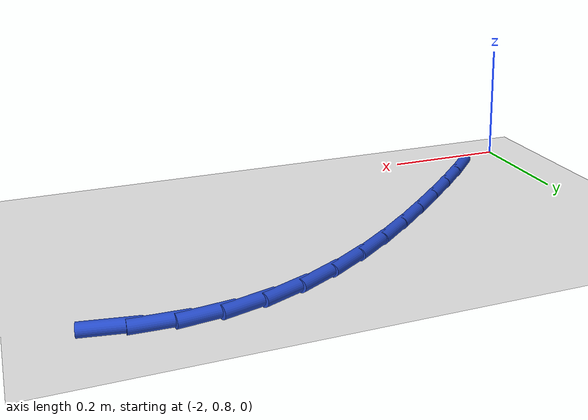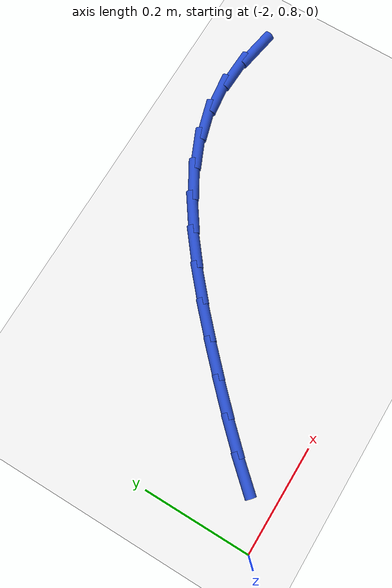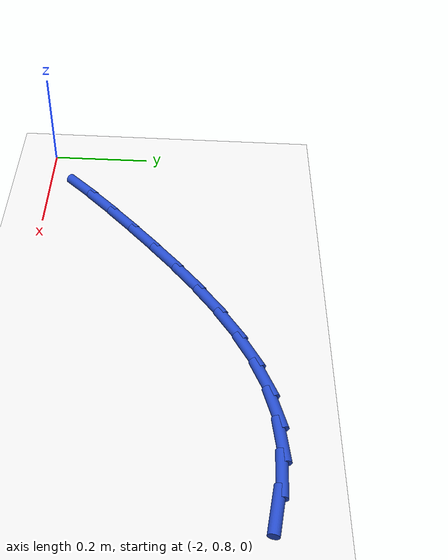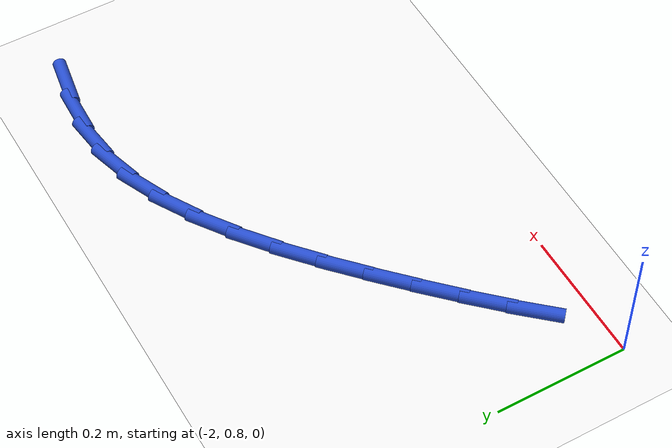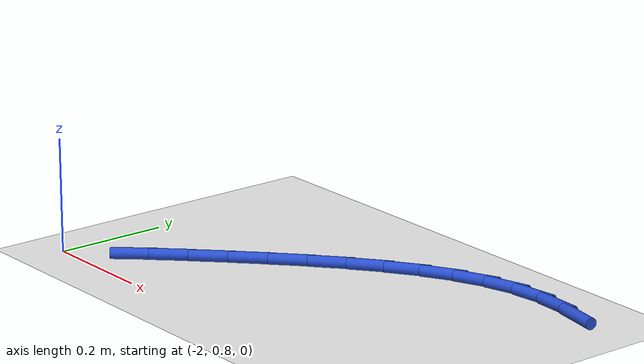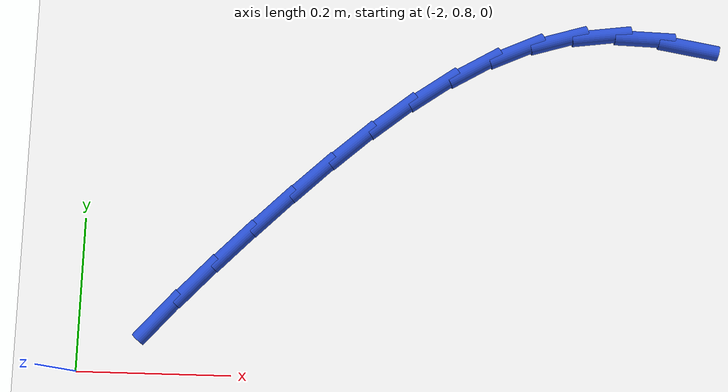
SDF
<sdf version="1.6">
 <world name="default">
  <model name="ground_plane">
   <static>1</static>
   <link name="link">
    <collision name="collision">
     <geometry><plane><normal>0 0 1</normal><size>100 100</size></plane></geometry>
     <surface><friction><ode><mu>100</mu><mu2>50</mu2></ode></friction></surface>
    </collision>
    <visual name="visual">
     <cast_shadows>0</cast_shadows>
     <geometry><plane><normal>0 0 1</normal><size>100 100</size></plane></geometry>
     <material>
      <script><uri>file://media/materials/scripts/gazebo.material</uri><name>Gazebo/WhiteGlow</name></script>
     </material>
    </visual>
   </link>
  </model>
  <model name="line">
   <link name="link_29">
    <pose>-1.2095417057278621 1.249883865041486 0.01 0 1.57 -0.17493050236412733</pose>
    <collision name="collision">
     <geometry><cylinder><radius>0.01</radius><length>0.08</length></cylinder></geometry>
    </collision>
    <visual name="visual">
     <material>
      <script><name>Gazebo/Blue</name><uri>file://media/materials/scripts/gazebo.material</uri></script>
     </material>
     <geometry><cylinder><radius>0.01</radius><length>0.08</length></cylinder></geometry>
    </visual>
   </link>
   <link name="link_30">
    <pose>-1.267807845268561 1.2601816447032816 0.01 0 1.57 -0.03686939797291417</pose>
    <collision name="collision">
     <geometry><cylinder><radius>0.01</radius><length>0.08</length></cylinder></geometry>
    </collision>
    <visual name="visual">
     <material>
      <script><name>Gazebo/Blue</name><uri>file://media/materials/scripts/gazebo.material</uri></script>
     </material>
     <geometry><cylinder><radius>0.01</radius><length>0.08</length></cylinder></geometry>
    </visual>
   </link>
   <link name="link_31">
    <pose>-1.3254341818070634 1.2623072562779438 0.01 0 1.57 0.1252751568842374</pose>
    <collision name="collision">
     <geometry><cylinder><radius>0.01</radius><length>0.08</length></cylinder></geometry>
    </collision>
    <visual name="visual">
     <material>
      <script><name>Gazebo/Blue</name><uri>file://media/materials/scripts/gazebo.material</uri></script>
     </material>
     <geometry><cylinder><radius>0.01</radius><length>0.08</length></cylinder></geometry>
    </visual>
   </link>
   <link name="link_32">
    <pose>-1.3822772966301415 1.2551487386418694 0.01 0 1.57 0.28479685886374906</pose>
    <collision name="collision">
     <geometry><cylinder><radius>0.01</radius><length>0.08</length></cylinder></geometry>
    </collision>
    <visual name="visual">
     <material>
      <script><name>Gazebo/Blue</name><uri>file://media/materials/scripts/gazebo.material</uri></script>
     </material>
     <geometry><cylinder><radius>0.01</radius><length>0.08</length></cylinder></geometry>
    </visual>
   </link>
   <link name="link_33">
    <pose>-1.4382446559386242 1.2387640122207422 0.01 0 1.57 0.41771203880531993</pose>
    <collision name="collision">
     <geometry><cylinder><radius>0.01</radius><length>0.08</length></cylinder></geometry>
    </collision>
    <visual name="visual">
     <material>
      <script><name>Gazebo/Blue</name><uri>file://media/materials/scripts/gazebo.material</uri></script>
     </material>
     <geometry><cylinder><radius>0.01</radius><length>0.08</length></cylinder></geometry>
    </visual>
   </link>
   <link name="link_34">
    <pose>-1.4932924879656135 1.214332072378114 0.01 0 1.57 0.5239899997058796</pose>
    <collision name="collision">
     <geometry><cylinder><radius>0.01</radius><length>0.08</length></cylinder></geometry>
    </collision>
    <visual name="visual">
     <material>
      <script><name>Gazebo/Blue</name><uri>file://media/materials/scripts/gazebo.material</uri></script>
     </material>
     <geometry><cylinder><radius>0.01</radius><length>0.08</length></cylinder></geometry>
    </visual>
   </link>
   <link name="link_35">
    <pose>-1.5473789820113726 1.1830770008519498 0.01 0 1.57 0.6068692956508819</pose>
    <collision name="collision">
     <geometry><cylinder><radius>0.01</radius><length>0.08</length></cylinder></geometry>
    </collision>
    <visual name="visual">
     <material>
      <script><name>Gazebo/Blue</name><uri>file://media/materials/scripts/gazebo.material</uri></script>
     </material>
     <geometry><cylinder><radius>0.01</radius><length>0.08</length></cylinder></geometry>
    </visual>
   </link>
   <link name="link_36">
    <pose>-1.600462327376164 1.1462228793802158 0.01 0 1.57 0.6700172502665226</pose>
    <collision name="collision">
     <geometry><cylinder><radius>0.01</radius><length>0.08</length></cylinder></geometry>
    </collision>
    <visual name="visual">
     <material>
      <script><name>Gazebo/Blue</name><uri>file://media/materials/scripts/gazebo.material</uri></script>
     </material>
     <geometry><cylinder><radius>0.01</radius><length>0.08</length></cylinder></geometry>
    </visual>
   </link>
   <link name="link_37">
    <pose>-1.6525007133602498 1.1049937897008772 0.01 0 1.57 0.7165725015389828</pose>
    <collision name="collision">
     <geometry><cylinder><radius>0.01</radius><length>0.08</length></cylinder></geometry>
    </collision>
    <visual name="visual">
     <material>
      <script><name>Gazebo/Blue</name><uri>file://media/materials/scripts/gazebo.material</uri></script>
     </material>
     <geometry><cylinder><radius>0.01</radius><length>0.08</length></cylinder></geometry>
    </visual>
   </link>
   <link name="link_38">
    <pose>-1.7034523292638932 1.0606138135518994 0.01 0 1.57 0.7488362782317824</pose>
    <collision name="collision">
     <geometry><cylinder><radius>0.01</radius><length>0.08</length></cylinder></geometry>
    </collision>
    <visual name="visual">
     <material>
      <script><name>Gazebo/Blue</name><uri>file://media/materials/scripts/gazebo.material</uri></script>
     </material>
     <geometry><cylinder><radius>0.01</radius><length>0.08</length></cylinder></geometry>
    </visual>
   </link>
   <link name="link_39">
    <pose>-1.7532753643873562 1.0143070326712482 0.01 0 1.57 0.7687958675614073</pose>
    <collision name="collision">
     <geometry><cylinder><radius>0.01</radius><length>0.08</length></cylinder></geometry>
    </collision>
    <visual name="visual">
     <material>
      <script><name>Gazebo/Blue</name><uri>file://media/materials/scripts/gazebo.material</uri></script>
     </material>
     <geometry><cylinder><radius>0.01</radius><length>0.08</length></cylinder></geometry>
    </visual>
   </link>
   <link name="link_40">
    <pose>-1.8019165861794577 0.9672546897372093 0.01 0 1.57 0.7866335487621915</pose>
    <collision name="collision">
     <geometry><cylinder><radius>0.01</radius><length>0.08</length></cylinder></geometry>
    </collision>
    <visual name="visual">
     <material>
      <script><name>Gazebo/Blue</name><uri>file://media/materials/scripts/gazebo.material</uri></script>
     </material>
     <geometry><cylinder><radius>0.01</radius><length>0.08</length></cylinder></geometry>
    </visual>
   </link>
   <link name="link_41">
    <pose>-1.8491319836663822 0.91992248947233 0.01 0 1.57 0.8106291281902998</pose>
    <collision name="collision">
     <geometry><cylinder><radius>0.01</radius><length>0.08</length></cylinder></geometry>
    </collision>
    <visual name="visual">
     <material>
      <script><name>Gazebo/Blue</name><uri>file://media/materials/scripts/gazebo.material</uri></script>
     </material>
     <geometry><cylinder><radius>0.01</radius><length>0.08</length></cylinder></geometry>
    </visual>
   </link>
   <link name="link_42">
    <pose>-1.8945198061917032 0.8721845145043946 0.01 0 1.57 0.8414812025857642</pose>
    <collision name="collision">
     <geometry><cylinder><radius>0.01</radius><length>0.08</length></cylinder></geometry>
    </collision>
    <visual name="visual">
     <material>
      <script><name>Gazebo/Blue</name><uri>file://media/materials/scripts/gazebo.material</uri></script>
     </material>
     <geometry><cylinder><radius>0.01</radius><length>0.08</length></cylinder></geometry>
    </visual>
   </link>
  </model>
 </world>
</sdf>
